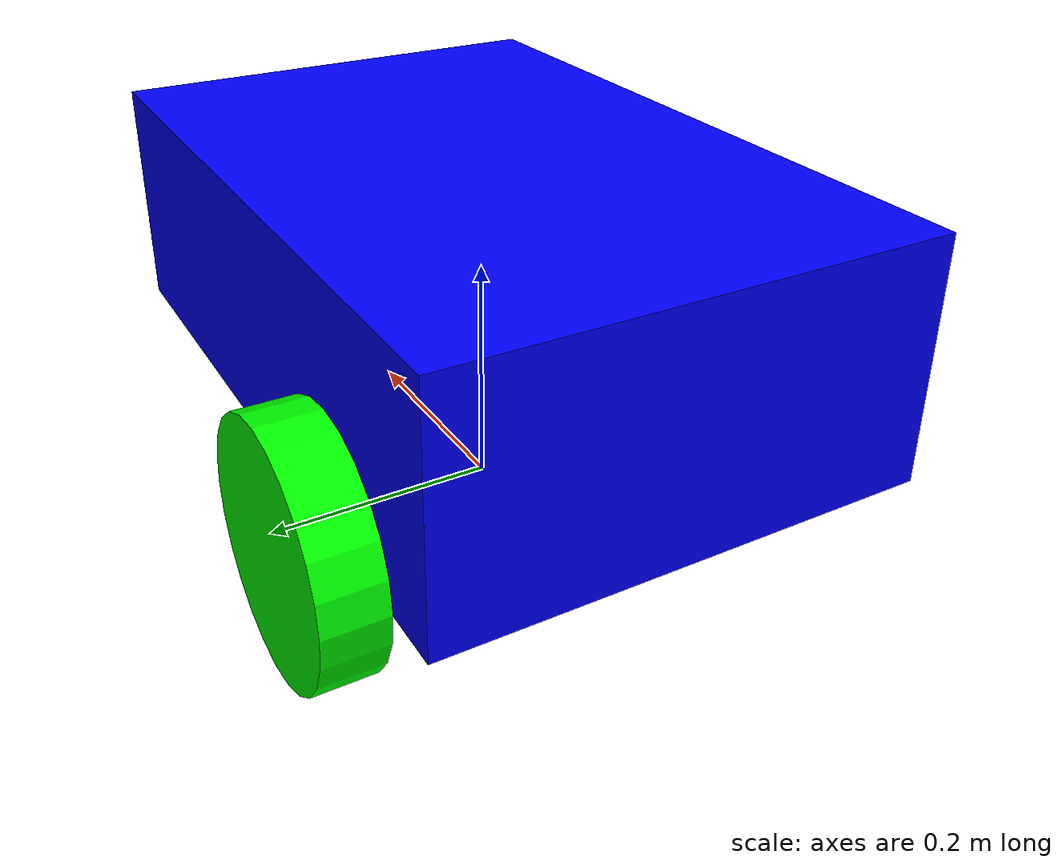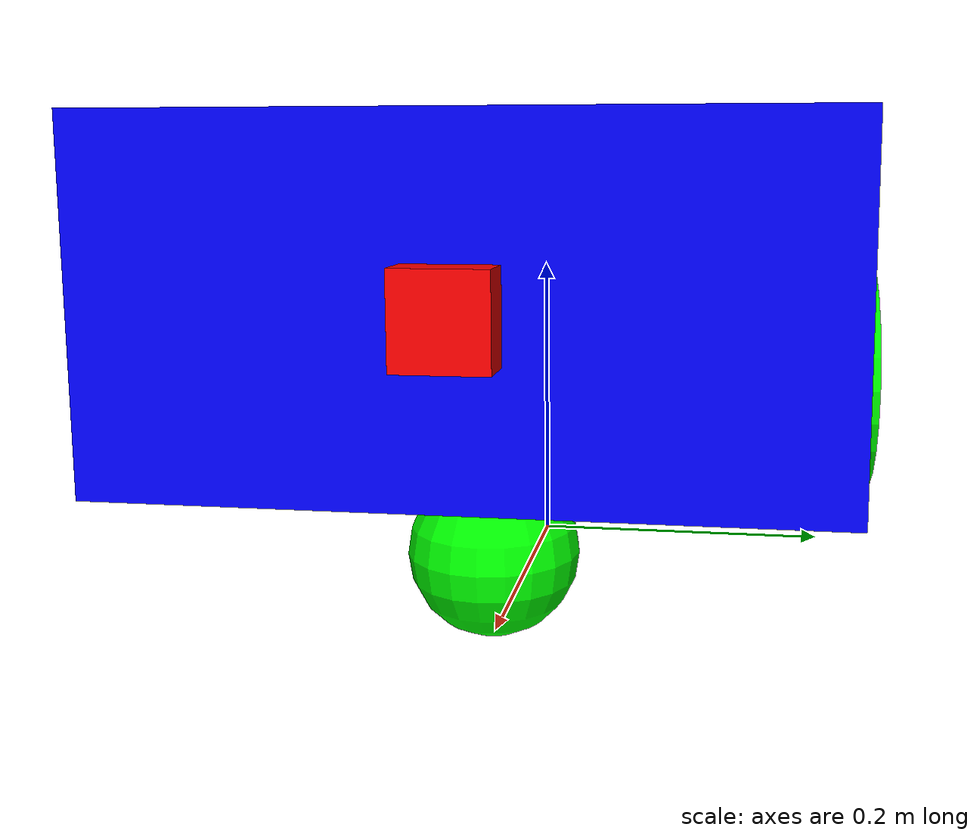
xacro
<?xml version="1.0"?>
<robot name="Castor Wheel Robot" xmlns:xacro="http://www.ros.org/wiki/xacro">

    <!-- Common Properties File -->
    <xacro:include filename="common_properties.xacro"/>

    <!-- Mobile Base File -->
    <xacro:include filename="mobile_base.xacro"/>

    <!-- Gazebo Plugins -->
    <xacro:include filename="mobile_base_gazebo.xacro"/>

    <!-- Sensor File -->
    <xacro:include filename="sensor.xacro"/>
</robot>

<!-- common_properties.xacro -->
<robot xmlns:xacro="http://www.ros.org/wiki/xacro">
    <!-- Material Blue -->
    <material name="blue">
        <color rgba="0 0 1 1"/>
    </material>
    <!-- Material Red -->
    <material name="red">
        <color rgba="1 0 0 1"/>
    </material>
    <!-- Material Green -->
    <material name="green">
        <color rgba="0 1 0 1"/>
    </material>
    <!-- Material Orange -->
    <material name="orange">
        <color rgba="1 0.5 0 1"/>
    </material>
    <!-- Material Yellow -->
    <material name="yellow">
        <color rgba="1 1 0 1"/>
    </material>

    <!-- Inertial Tags -->
    <!-- Box Inertia -->
    <xacro:macro name="box_inertia" params="m l w h xyz rpy">
        <inertial>
            <origin xyz="${xyz}" rpy="${rpy}"/>
            <mass value="${m}"/>
            <inertia ixx="${(m/12)*(h*h+l*l)}" ixy="0.0" ixz="0.0" iyy="${(m/12)*(h*h+w*w)}" iyz="0.0" izz="${(m/12)*(w*w+l*l)}"/>
        </inertial>
    </xacro:macro>
    <!-- Cylinder Inertia -->
    <xacro:macro name="cylinder_inertia" params="m r l xyz rpy">
        <inertial>
            <origin xyz="${xyz}" rpy="${rpy}"/>
            <mass value="${m}"/>
            <inertia ixx="${(m/12)*((3*r*r)+(l*l))}" ixy="0.0" ixz="0.0" iyy="${(m/12)*((3*r*r)+(l*l))}" iyz="0.0" izz="${(m/2)*r*r}"/>
        </inertial>
    </xacro:macro>
    <!-- Sphere Inertia -->
    <xacro:macro name="sphere_inertia" params="m r xyz rpy">
        <inertial>
            <origin xyz="${xyz}" rpy="${rpy}"/>
            <mass value="${m}"/>
            <inertia ixx="${2/5*m*r*r}" ixy="0.0" ixz="0.0" iyy="${2/5*m*r*r}" iyz="0.0" izz="${2/5*m*r*r}"/>
        </inertial>
    </xacro:macro>
</robot>

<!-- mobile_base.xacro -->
<robot xmlns:xacro="http://www.ros.org/wiki/xacro">
    <!-- Macros -->
    <xacro:property name="base_length" value="0.6"/>
    <xacro:property name="base_width" value="0.4"/>
    <xacro:property name="base_height" value="0.2"/>
    <xacro:property name="wheel_radius" value="0.1"/>
    <xacro:property name="wheel_length" value="0.05"/>

    <!-- Empty footprint link -->
    <link name="base_footprint">
    </link>
    <!-- Robot base link -->
    <link name="base_link">
        <visual>
            <geometry>
                <box size="${base_length} ${base_width} ${base_height}"/>
            </geometry>
            <material name="blue"/>
            <origin xyz="0 0 ${base_height/2}" rpy="0 0 0"/>
        </visual>
        <collision>
            <geometry>
                <box size="${base_length} ${base_width} ${base_height}"/>
            </geometry>
            <origin xyz="0 0 ${base_height/2}" rpy="0 0 0"/>
        </collision>
        <xacro:box_inertia m="5.0" l="${3*base_length}" w="${3*base_width}" h="${3*base_height}" xyz="0 0 ${base_height/2}" rpy="0 0 0"/>
    </link>
    <!-- Joint between base_footprint and base -->
    <joint name="base_footprint_base_link_joint" type="fixed">
        <parent link="base_footprint"/>
        <child link="base_link"/>
        <origin xyz="0 0 ${wheel_radius}" rpy="0 0 0"/>
    </joint>
    <!-- Left Wheel Link -->
    <link name="left_wheel">
        <visual>
            <geometry>
                <cylinder radius="${wheel_radius}" length="${wheel_length}"/>
            </geometry>
            <material name="green"/>
            <origin xyz="0 0 0" rpy="${pi/2} 0 0"/>
        </visual>
        <collision>
            <geometry>
                <cylinder radius="${wheel_radius}" length="${wheel_length}"/>
            </geometry>
            <origin xyz="0 0 0" rpy="${pi/2} 0 0"/>
        </collision>
        <xacro:cylinder_inertia m="1.0" r="${3*wheel_radius}" l="${3*wheel_length}" xyz="0 0 0" rpy="${pi/2} 0 0"/>
    </link>
    <!-- Joint between base and left wheel -->
    <joint name="base_link_left_wheel_joint" type="continuous">
        <parent link="base_link"/>
        <child link="left_wheel"/>
        <origin xyz="${-base_length/4} ${(base_width/2) + (wheel_length/2)} 0" rpy="0 0 0"/>
        <axis xyz="0 1 0"/>
    </joint>
    <!-- Right Wheel Link -->
    <link name="right_wheel">
        <visual>
            <geometry>
                <cylinder radius="${wheel_radius}" length="${wheel_length}"/>
            </geometry>
            <material name="green"/>
            <origin xyz="0 0 0" rpy="${pi/2} 0 0"/>
        </visual>
        <collision>
            <geometry>
                <cylinder radius="${wheel_radius}" length="${wheel_length}"/>
            </geometry>
            <origin xyz="0 0 0" rpy="${pi/2} 0 0"/>
        </collision>
        <xacro:cylinder_inertia m="1.0" r="${3*wheel_radius}" l="${3*wheel_length}" xyz="0 0 0" rpy="${pi/2} 0 0"/>
    </link>
    <!-- Joint between base and right wheel -->
    <joint name="base_link_right_wheel_joint" type="continuous">
        <parent link="base_link"/>
        <child link="right_wheel"/>
        <origin xyz="${-base_length/4} ${-((base_width/2) + (wheel_length/2))} 0" rpy="0 0 0"/>
        <axis xyz="0 1 0"/>
    </joint>
    <!-- Castor Wheel Link -->
    <link name="castor_wheel">
        <visual>
            <geometry>
                <sphere radius="${wheel_radius/2}"/>
            </geometry>
            <material name="green"/>
            <origin xyz="0 0 0" rpy="0 0 0"/>
        </visual>
        <collision>
            <geometry>
                <sphere radius="${wheel_radius/2}"/>
            </geometry>
            <origin xyz="0 0 0" rpy="0 0 0"/>
        </collision>
        <xacro:sphere_inertia m="0.5" r="${3*wheel_radius/2}" xyz="0 0 0" rpy="0 0 0"/>
    </link>
    <!-- Joint between base and castor wheel -->
    <joint name="base_link_castor_wheel_joint" type="fixed">
        <parent link="base_link"/>
        <child link="castor_wheel"/>
        <origin xyz="${base_length/3} 0 ${-wheel_radius/2}" rpy="0 0 0"/>
    </joint>
</robot>

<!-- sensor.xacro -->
<robot xmlns:xacro="http://www.ros.org/wiki/xacro">

    <!-- Camera Link -->
    <link name="camera_link">
        <visual>
            <geometry>
                <box size="0.025 0.05 0.05"/>
            </geometry>
            <material name="red"/>
            <orgin xyz="0 0 0" rpy="0 0 0"/>
        </visual>
        <collision>
            <geometry>
                <box size="0.025 0.05 0.05"/>
            </geometry>
            <orgin xyz="0 0 0" rpy="0 0 0"/>
        </collision>
        <xacro:box_inertia m="0.5" l="0.025" w="0.05" h="0.05" xyz="0 0 0" rpy="0 0 0"/>
    </link>
    <!-- Joint between base and camera -->
    <joint name="base_link_camera_link_joint" type="fixed">
        <parent link="base_link"/>
        <child link="camera_link"/>
        <origin xyz="${(base_length+0.025)/2} 0 ${base_height/2}" rpy="0 0 0"/>
    </joint>
    <!-- Gazebo Color -->
    <gazebo reference="camera_link">
        <material>Gazebo/Red</material>
        <sensor name="camera_sensor" type="camera">
            <pose> 0 0 0 0 0 0</pose>
            <visualize>true</visualize>
            <update_rate>10.0</update_rate>
            <plugin name="camera_plugin" filename="libgazebo_ros_camera.so">
                <frame_name>camera_link</frame_name>
            </plugin>
        </sensor>
    </gazebo>
</robot>
